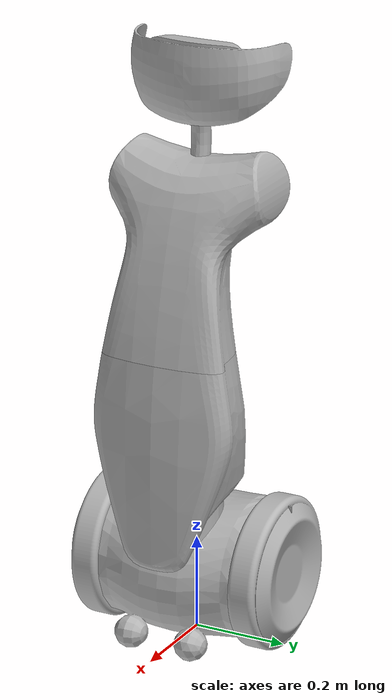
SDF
<?xml version="1.0" ?>
<sdf version='1.5'>
  <model name='SIM_CER_ROBOT'>
    <link name='mobile_base_body'>
      <pose>0 0 0 0 -0 0</pose>
      <inertial>
        <pose>0.016717 0 0.201998 0 -0 0</pose>
        <mass>16</mass>
        <inertia>
          <ixx>0.331884</ixx>
          <ixy>0</ixy>
          <ixz>-0.0448172</ixz>
          <iyy>0.34974</iyy>
          <iyz>0</iyz>
          <izz>0.21095</izz>
        </inertia>
      </inertial>
      <collision name='mobile_base_body_collision'>
        <pose>0 0 0 0 -0 0</pose>
        <geometry>
          <mesh>
            <scale>0.001 0.001 0.001</scale>
            <uri>model://cer/meshes/stl/low_res/sim_cer_mobilebase_body_prt.stl</uri>
          </mesh>
        </geometry>
        <surface>
            <friction>
              <ode>
                <mu>0.0</mu>
                <mu2>0.0</mu2>
                <slip1>1.0</slip1>
                <slip2>1.0</slip2>
              </ode>
            </friction>
         </surface>
      </collision>
      <visual name='mobile_base_body_visual'>
        <pose>0 0 0 0 -0 0</pose>
        <geometry>
          <mesh>
            <scale>0.001 0.001 0.001</scale>
            <uri>model://cer/meshes/stl/low_res/sim_cer_mobilebase_body_prt.stl</uri>
          </mesh>
        </geometry>
      </visual>
      <sensor name ='base_laser' type='ray'>
      <pose>0.3 0 0.1 0 0 0</pose>
      <visualize>true</visualize>
      <update_rate>40</update_rate>
      <ray>
        <scan>
          <horizontal>
            <samples>360</samples>
            <resolution>1</resolution>
            <min_angle>-3.14</min_angle>
            <max_angle>3.14</max_angle>
          </horizontal>
        </scan>
        <range>
          <min>0.10</min>
          <max>5.0</max>
          <resolution>0.01</resolution>
        </range>
        <noise>
          <type>gaussian</type>
          <mean>0.0</mean>
          <stddev>0.005</stddev>
        </noise>
      </ray>
        <plugin name='laser_sensor' filename='libgazebo_yarp_lasersensor.so'>
           <yarpConfigurationFile>model://cer.low_res/conf/gazebo_cer_laser_sensor.ini</yarpConfigurationFile>
        </plugin>
      </sensor>
    </link>
    <link name='mobile_base_l_tyre'>
      <pose>0 0.15 0.16 0 -0 0</pose>
      <inertial>
        <pose>0 0.034423 0 0 -0 0</pose>
        <mass>3</mass>
        <inertia>
          <ixx>0.0200167</ixx>
          <ixy>0</ixy>
          <ixz>0</ixz>
          <iyy>0.0376153</iyy>
          <iyz>0</iyz>
          <izz>0.0200167</izz>
        </inertia>
      </inertial>
      <collision name='mobile_base_l_tyre_collision'>
        <pose>0 -0.15 -0.16 0 -0 0</pose>
        <geometry>
          <mesh>
            <scale>0.001 0.001 0.001</scale>
            <uri>model://cer/meshes/stl/low_res/sim_cer_mobilebase_l_tyre_prt.stl</uri>
          </mesh>
        </geometry>
      </collision>
      <visual name='mobile_base_l_tyre_visual'>
        <pose>0 -0.15 -0.16 0 -0 0</pose>
        <geometry>
          <mesh>
            <scale>0.001 0.001 0.001</scale>
            <uri>model://cer/meshes/stl/low_res/sim_cer_mobilebase_l_tyre_prt.stl</uri>
          </mesh>
        </geometry>
      </visual>
    </link>
    <joint name='mobile_base_l_wheel' type='revolute'>
      <child>mobile_base_l_tyre</child>
      <parent>mobile_base_body</parent>
      <axis>
        <xyz>0 1 0</xyz>
        <limit>
          <effort>100</effort>
          <velocity>50000</velocity>
        </limit>
        <dynamics>
          <damping>10</damping>
          <friction>0</friction>
          <spring_reference>0</spring_reference>
          <spring_stiffness>0</spring_stiffness>
        </dynamics>
        <use_parent_model_frame>1</use_parent_model_frame>
      </axis>
      <physics>
        <ode>
          <implicit_spring_damper>1</implicit_spring_damper>
          <cfm_damping>1</cfm_damping>
          <limit>
            <cfm>0</cfm>
            <erp>0.2</erp>
          </limit>
        </ode>
      </physics>
    </joint>
    <link name='mobile_base_r_tyre'>
      <pose>0 -0.15 0.16 0 -0 0</pose>
      <inertial>
        <pose>0 -0.034423 0 0 -0 0</pose>
        <mass>3</mass>
        <inertia>
          <ixx>0.0200167</ixx>
          <ixy>0</ixy>
          <ixz>0</ixz>
          <iyy>0.0376153</iyy>
          <iyz>0</iyz>
          <izz>0.0200167</izz>
        </inertia>
      </inertial>
      <collision name='mobile_base_r_tyre_collision'>
        <pose>0 0.15 -0.16 0 -0 0</pose>
        <geometry>
          <mesh>
            <scale>0.001 0.001 0.001</scale>
            <uri>model://cer/meshes/stl/low_res/sim_cer_mobilebase_r_tyre_prt.stl</uri>
          </mesh>
        </geometry>
      </collision>
      <visual name='mobile_base_r_tyre_visual'>
        <pose>0 0.15 -0.16 0 -0 0</pose>
        <geometry>
          <mesh>
            <scale>0.001 0.001 0.001</scale>
            <uri>model://cer/meshes/stl/low_res/sim_cer_mobilebase_r_tyre_prt.stl</uri>
          </mesh>
        </geometry>
      </visual>
    </link>
    <joint name='mobile_base_r_wheel' type='revolute'>
      <child>mobile_base_r_tyre</child>
      <parent>mobile_base_body</parent>
      <axis>
        <xyz>0 1 0</xyz>
        <limit>
          <effort>100</effort>
          <velocity>50000</velocity>
        </limit>
        <dynamics>
          <damping>10</damping>
          <friction>0</friction>
          <spring_reference>0</spring_reference>
          <spring_stiffness>0</spring_stiffness>
        </dynamics>
        <use_parent_model_frame>1</use_parent_model_frame>
      </axis>
      <physics>
        <ode>
          <implicit_spring_damper>1</implicit_spring_damper>
          <cfm_damping>1</cfm_damping>
          <limit>
            <cfm>0</cfm>
            <erp>0.2</erp>
          </limit>
        </ode>
      </physics>
    </joint>
    <link name='torso_tripod_slider_eq'>
      <pose>0.074 0 0.231 0 -0 0</pose>
      <inertial>
        <pose>0.010986 9e-06 0.236044 0 -0 0</pose>
        <mass>2.5</mass>
        <inertia>
          <ixx>0.0334422</ixx>
          <ixy>0</ixy>
          <ixz>0.00203295</ixz>
          <iyy>0.0329538</iyy>
          <iyz>2.22187e-06</iyz>
          <izz>0.022808</izz>
        </inertia>
      </inertial>
      <collision name='torso_tripod_slider_eq_collision'>
        <pose>-0.074 0 -0.231 0 -0 0</pose>
        <geometry>
          <mesh>
            <scale>0.001 0.001 0.001</scale>
            <uri>model://cer/meshes/stl/sim_cer_torso_tripod_slider_eq_prt.stl</uri>
          </mesh>
        </geometry>
      </collision>
      <visual name='torso_tripod_slider_eq_visual'>
        <pose>-0.074 0 -0.231 0 -0 0</pose>
        <geometry>
          <mesh>
            <scale>0.001 0.001 0.001</scale>
            <uri>model://cer/meshes/stl/sim_cer_torso_tripod_slider_eq_prt.stl</uri>
          </mesh>
        </geometry>
      </visual>
    </link>
    <joint name='torso_tripod_heave_eq' type='prismatic'>
      <child>torso_tripod_slider_eq</child>
      <parent>mobile_base_body</parent>
      <axis>
        <xyz>0 0 1</xyz>
        <limit>
          <lower>-0.05</lower>
          <upper>0.15</upper>
          <effort>2000</effort>
          <velocity>50000</velocity>
        </limit>
        <dynamics>
          <damping>1000</damping>
          <friction>0</friction>
          <spring_reference>0</spring_reference>
          <spring_stiffness>0</spring_stiffness>
        </dynamics>
        <use_parent_model_frame>1</use_parent_model_frame>
      </axis>
      <physics>
        <ode>
          <implicit_spring_damper>1</implicit_spring_damper>
          <cfm_damping>1</cfm_damping>
          <limit>
            <cfm>0.1</cfm>
            <erp>0.2</erp>
          </limit>
        </ode>
      </physics>
    </joint>
    <link name='torso_tripod_pin_eq'>
      <pose>0.074 0 0.63 3.14159 -0 0</pose>
      <inertial>
        <pose>0 0 0 0 -0 0</pose>
        <mass>0.25</mass>
        <inertia>
          <ixx>2.8125e-03</ixx>
          <ixy>0</ixy>
          <ixz>0</ixz>
          <iyy>0.000222396</iyy>
          <iyz>0</iyz>
          <izz>0.000222396</izz>
        </inertia>
      </inertial>
      <collision name='torso_tripod_pin_eq_collision'>
        <pose>0 0 0 0 -0 0</pose>
        <geometry>
          <mesh>
            <scale>0.001 0.001 0.001</scale>
            <uri>model://cer/meshes/stl/sim_cer_torso_tripod_pin_eq_prt.stl</uri>
          </mesh>
        </geometry>
      </collision>
      <visual name='torso_tripod_pin_eq_visual'>
        <pose>0 0 0 0 -0 0</pose>
        <geometry>
          <mesh>
            <scale>0.001 0.001 0.001</scale>
            <uri>model://cer/meshes/stl/sim_cer_torso_tripod_pin_eq_prt.stl</uri>
          </mesh>
        </geometry>
      </visual>
    </link>
    <joint name='torso_tripod_roll_eq' type='revolute'>
      <child>torso_tripod_pin_eq</child>
      <parent>torso_tripod_slider_eq</parent>
      <axis>
        <xyz>1 0 0</xyz>
        <limit>
          <lower>-0.523599</lower>
          <upper>0.523599</upper>
          <effort>100</effort>
          <velocity>50000</velocity>
        </limit>
        <dynamics>
          <damping>100</damping>
          <friction>0</friction>
          <spring_reference>0</spring_reference>
          <spring_stiffness>0</spring_stiffness>
        </dynamics>
        <use_parent_model_frame>1</use_parent_model_frame>
      </axis>
      <physics>
        <ode>
          <implicit_spring_damper>1</implicit_spring_damper>
          <cfm_damping>1</cfm_damping>
          <limit>
            <cfm>0.1</cfm>
            <erp>20</erp>
          </limit>
        </ode>
      </physics>
    </joint>
    <link name='torso_tripod_platform'>
      <pose>0.074 0 0.63 -0 -0 0</pose>
      <inertial>
        <pose>0 0 0 0 -0 0</pose>
        <mass>0.25</mass>
        <inertia>
          <ixx>0.000255208</ixx>
          <ixy>0</ixy>
          <ixz>0</ixz>
          <iyy>0.000255208</iyy>
          <iyz>0</iyz>
          <izz>0.00050625</izz>
        </inertia>
      </inertial>
      <collision name='torso_tripod_platform_collision'>
        <pose>-0.074 0 -0.63 0 -0 0</pose>
        <geometry>
          <mesh>
            <scale>0.001 0.001 0.001</scale>
            <uri>model://cer/meshes/stl/sim_cer_torso_tripod_platform_prt.stl</uri>
          </mesh>
        </geometry>
      </collision>
      <visual name='torso_tripod_platform_visual'>
        <pose>-0.074 0 -0.63 0 -0 0</pose>
        <geometry>
          <mesh>
            <scale>0.001 0.001 0.001</scale>
            <uri>model://cer/meshes/stl/sim_cer_torso_tripod_platform_prt.stl</uri>
          </mesh>
        </geometry>
      </visual>
    </link>
    <joint name='torso_tripod_pitch_eq' type='revolute'>
      <child>torso_tripod_platform</child>
      <parent>torso_tripod_pin_eq</parent>
      <axis>
        <xyz>0 1 -0</xyz>
        <limit>
          <lower>-0.523599</lower>
          <upper>0.523599</upper>
          <effort>100</effort>
          <velocity>50000</velocity>
        </limit>
        <dynamics>
          <damping>100</damping>
          <friction>0</friction>
          <spring_reference>0</spring_reference>
          <spring_stiffness>0</spring_stiffness>
        </dynamics>
        <use_parent_model_frame>1</use_parent_model_frame>
      </axis>
      <physics>
        <ode>
          <implicit_spring_damper>1</implicit_spring_damper>
          <cfm_damping>1</cfm_damping>
          <limit>
            <cfm>0</cfm>
            <erp>0.2</erp>
          </limit>
        </ode>
      </physics>
    </joint>
    <link name='torso_chest'>
      <pose>0.074 0 0.63 -0 -0 0</pose>
      <inertial>
        <pose>-0.036697 1e-05 0.206634 0 -0 0</pose>
        <mass>10</mass>
        <inertia>
          <ixx>0.187606</ixx>
          <ixy>0</ixy>
          <ixz>0.0385076</ixz>
          <iyy>0.16987</iyy>
          <iyz>-5.48478e-06</iyz>
          <izz>0.0906842</izz>
        </inertia>
      </inertial>
      <collision name='torso_chest_collision'>
        <pose>-0.074 0 -0.63 0 -0 0</pose>
        <geometry>
          <mesh>
            <scale>0.001 0.001 0.001</scale>
            <uri>model://cer/meshes/stl/sim_cer_torso_chest_prt.stl</uri>
          </mesh>
        </geometry>
      </collision>
      <visual name='torso_chest_visual'>
        <pose>-0.074 0 -0.63 0 -0 0</pose>
        <geometry>
          <mesh>
            <scale>0.001 0.001 0.001</scale>
            <uri>model://cer/meshes/stl/sim_cer_torso_chest_prt.stl</uri>
          </mesh>
        </geometry>
      </visual>
    </link>
    <joint name='torso_yaw' type='revolute'>
      <child>torso_chest</child>
      <parent>torso_tripod_platform</parent>
      <axis>
        <xyz>0 0 1</xyz>
        <limit>
          <lower>-1.0472</lower>
          <upper>1.0472</upper>
          <effort>100</effort>
          <velocity>50000</velocity>
        </limit>
        <dynamics>
          <damping>10</damping>
          <friction>0</friction>
          <spring_reference>0</spring_reference>
          <spring_stiffness>0</spring_stiffness>
        </dynamics>
        <use_parent_model_frame>1</use_parent_model_frame>
      </axis>
      <physics>
        <ode>
          <implicit_spring_damper>1</implicit_spring_damper>
          <cfm_damping>1</cfm_damping>
          <limit>
            <cfm>0</cfm>
            <erp>0.2</erp>
          </limit>
        </ode>
      </physics>
    </joint>
    <link name='neck'>
      <pose>-0.02 0.000647 1 -0 -0 0</pose>
      <inertial>
        <pose>0.005658 -0.000647 0.06232 0 -0 0</pose>
        <mass>0.5</mass>
        <inertia>
          <ixx>0.00110442</ixx>
          <ixy>0</ixy>
          <ixz>-6.96774e-04</ixz>
          <iyy>0.00111727</iyy>
          <iyz>0</iyz>
          <izz>0.000112854</izz>
        </inertia>
      </inertial>
      <collision name='neck_collision'>
        <pose>0.02 -0.000647 -1 0 -0 0</pose>
        <geometry>
          <mesh>
            <scale>0.001 0.001 0.001</scale>
            <uri>model://cer/meshes/stl/sim_cer_neck_prt.stl</uri>
          </mesh>
        </geometry>
      </collision>
      <visual name='neck_visual'>
        <pose>0.02 -0.000647 -1 0 -0 0</pose>
        <geometry>
          <mesh>
            <scale>0.001 0.001 0.001</scale>
            <uri>model://cer/meshes/stl/sim_cer_neck_prt.stl</uri>
          </mesh>
        </geometry>
      </visual>
    </link>
    <joint name='neck_pitch' type='revolute'>
      <child>neck</child>
      <parent>torso_chest</parent>
      <axis>
        <xyz>0 1 -0</xyz>
        <limit>
          <lower>-0.523599</lower>
          <upper>1.39626</upper>
          <effort>100</effort>
          <velocity>50000</velocity>
        </limit>
        <dynamics>
          <damping>10</damping>
          <friction>0</friction>
          <spring_reference>0</spring_reference>
          <spring_stiffness>0</spring_stiffness>
        </dynamics>
        <use_parent_model_frame>1</use_parent_model_frame>
      </axis>
      <physics>
        <ode>
          <implicit_spring_damper>1</implicit_spring_damper>
          <cfm_damping>1</cfm_damping>
          <limit>
            <cfm>0</cfm>
            <erp>0.2</erp>
          </limit>
        </ode>
      </physics>
    </joint>
    <link name='head'>
      <pose>-0.008321 0 1.15838 -0 -0 0</pose>
      <inertial>
        <pose>0.048654 -2e-06 -0.00409 0 -0 0</pose>
        <mass>2</mass>
        <inertia>
          <ixx>0.0133792</ixx>
          <ixy>-1.68274e-04</ixy>
          <ixz>0.000330609</ixz>
          <iyy>0.00439722</iyy>
          <iyz>0</iyz>
          <izz>0.0119116</izz>
        </inertia>
      </inertial>
      <collision name='head_collision'>
        <pose>0.008321 0 -1.15838 0 -0 0</pose>
        <geometry>
          <mesh>
            <scale>0.001 0.001 0.001</scale>
            <uri>model://cer/meshes/stl/sim_cer_head_prt.stl</uri>
          </mesh>
        </geometry>
        <surface>
          <contact>
            <ode/>
          </contact>
          <friction>
            <ode/>
          </friction>
        </surface>
        <surface>
          <contact>
            <ode/>
          </contact>
          <friction>
            <ode/>
          </friction>
        </surface>
        <surface>
          <contact>
            <ode/>
          </contact>
          <friction>
            <ode/>
          </friction>
        </surface>
      </collision>
      <visual name='head_visual'>
        <pose>0.008321 0 -1.15838 0 -0 0</pose>
        <geometry>
          <mesh>
            <scale>0.001 0.001 0.001</scale>
            <uri>model://cer/meshes/stl/sim_cer_head_prt.stl</uri>
          </mesh>
        </geometry>
      </visual>
      <velocity_decay/>
      <sensor name="multicamera_sensor" type="multicamera">
        <pose>0.066821 0 -0.06838 0 0 0</pose>
        <always_on>1</always_on>
        <update_rate>30</update_rate>
        <visualize>true</visualize>
        <camera name='left_camera'>
          <pose>0 +0.0325 0 0 0 0</pose>
          <horizontal_fov>1.5708</horizontal_fov>
          <image>
            <width>640</width>
            <height>480</height>
          </image>
          <clip>
            <near>0.1</near>
            <far>100</far>
          </clip>
        </camera>
        <camera name='right_camera'>
          <pose>0 -0.0325 0 0 0 0</pose>
          <horizontal_fov>1.5708</horizontal_fov>
          <image>
            <width>640</width>
            <height>480</height>
          </image>
          <clip>
            <near>0.1</near>
            <far>100</far>
          </clip>
        </camera>
        <plugin name='multicamera_plugin' filename='libgazebo_yarp_multicamera.so'>
          <yarpConfigurationFile>model://cer.low_res/conf/gazebo_cer_multicamera.ini</yarpConfigurationFile>
        </plugin>
      </sensor>
      <gravity>1</gravity>
      <velocity_decay/>
      <self_collide>0</self_collide>
      <sensor name='asus_xtion' type='depth'>
        <always_on>1</always_on>
        <update_rate>30</update_rate>
        <pose>0.077021 0 0.04662 0 -0 0</pose>
        <camera name='__default__'>
          <horizontal_fov>1.022593333</horizontal_fov>
          <image>
            <width>320</width>
            <height>240</height>
            <format>R8G8B8</format>
          </image>
          <clip>
            <near>0.02</near>
            <far>3000</far>
          </clip>
        </camera>
      </sensor>
    </link>
    <joint name='neck_yaw' type='revolute'>
      <child>head</child>
      <parent>neck</parent>
      <axis>
        <xyz>0.173648 0 0.984808</xyz>
        <limit>
          <lower>-1.39626</lower>
          <upper>1.39626</upper>
          <effort>100</effort>
          <velocity>50000</velocity>
        </limit>
        <dynamics>
          <damping>10</damping>
          <friction>0</friction>
          <spring_reference>0</spring_reference>
          <spring_stiffness>0</spring_stiffness>
        </dynamics>
        <use_parent_model_frame>1</use_parent_model_frame>
      </axis>
      <physics>
        <ode>
          <implicit_spring_damper>1</implicit_spring_damper>
          <cfm_damping>1</cfm_damping>
          <limit>
            <cfm>0</cfm>
            <erp>0.2</erp>
          </limit>
        </ode>
      </physics>
    </joint>
    <static>0</static>
    <plugin name='controlboard_torso_yaw' filename='libgazebo_yarp_controlboard.so'>
      <yarpConfigurationFile>model://cer.low_res/conf/gazebo_cer_torso_yaw.ini</yarpConfigurationFile>
    </plugin>
    <plugin name='controlboard_torso' filename='libgazebo_yarp_controlboard.so'>
      <yarpConfigurationFile>model://cer.low_res/conf/gazebo_cer_torso.ini</yarpConfigurationFile>
    </plugin>
    <plugin name='controlboard_torso_tripod' filename='libgazeboTripod.so'>
      <yarpConfigurationFile>model://cer.low_res/conf/gazebo_cer_torso_tripod.ini</yarpConfigurationFile>
    </plugin>
    <plugin name='controlboard_head' filename='libgazebo_yarp_controlboard.so'>
      <yarpConfigurationFile>model://cer.low_res/conf/gazebo_cer_head.ini</yarpConfigurationFile>
    </plugin>
    <plugin name='controlboard_mobile_base' filename='libgazebo_yarp_controlboard.so'>
      <yarpConfigurationFile>model://cer.low_res/conf/gazebo_cer_mobile_base.ini</yarpConfigurationFile>
    </plugin>
    <plugin name='controlboard_all' filename='libgazebo_yarp_controlboard.so'>
      <yarpConfigurationFile>model://cer.low_res.no_arms/conf/gazebo_cer_all.ini</yarpConfigurationFile>
    </plugin>
    <plugin name='world_interface' filename='libgazebo_yarp_worldinterface.so'>
      <yarpConfigurationFile>model://cer.low_res/conf/worldInterface.ini</yarpConfigurationFile>
    </plugin>
  </model>
</sdf>
